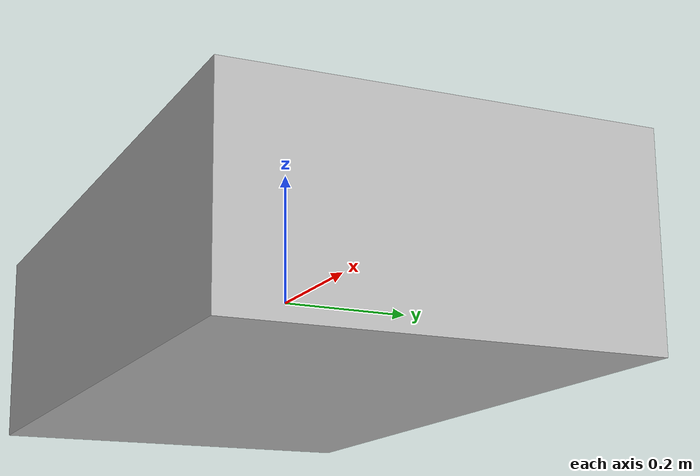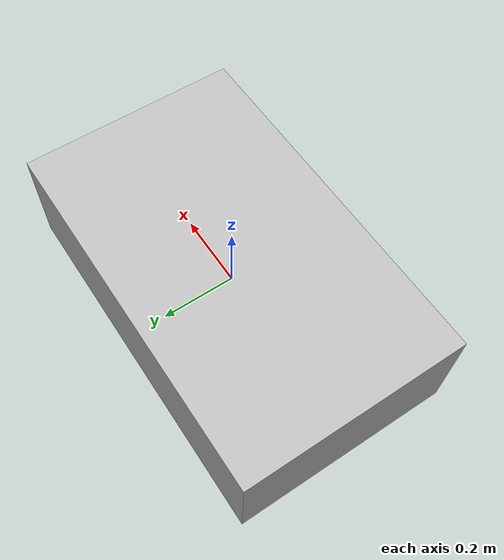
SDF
<?xml version="1.0" ?>
<sdf version="1.6">

  <model name="spacecraft">

    <static>false</static>

    <link name="body">

      <inertia>
        <mass>10</mass>
        <ixx>0.375</ixx>
        <ixy>0.0</ixy>
        <ixz>0.0</ixz>
        <iyy>0.9083</iyy>
        <iyz>0.0</iyz>
        <izz>1.1333</izz>
      </inertia>

      <visual name="body_visual">
        <!-- geometry -->
        <geometry>
          <box>
            <size>1.0 0.6 0.3</size>
          </box>
        </geometry>
        <!-- material -->
        </visual>

      <collision name="body_collision">
        <!-- geometry -->
        <geometry>
          <box>
            <size>1.0 0.6 0.3</size>
          </box>
        </geometry>
      </collision>

      <sensor name="spacecraft_camera" type="camera">
        <pose>0.5 0 0 0 0 0</pose>
        <camera>
            <image>
            <width>640</width>
            <height>480</height>
          </image>
        </camera>
        <plugin name="spacecraft_camera" filename="libgazebo_ros_camera.so">
            <cameraName>spacecraft_camera</cameraName>
            <frameName>camera_link</frameName>
            <imageTopicName>camera/image_raw</imageTopicName>
            <!-- frq = 10hz = update rate -->
            <updateRate>10</updateRate>
        </plugin>
      </sensor>

    </link>

    <plugin name="spacecraft_cmd_vel_plugin"
        filename="libspacecraft_cmd_vel_plugin.so">
    </plugin>

  </model>

</sdf>
